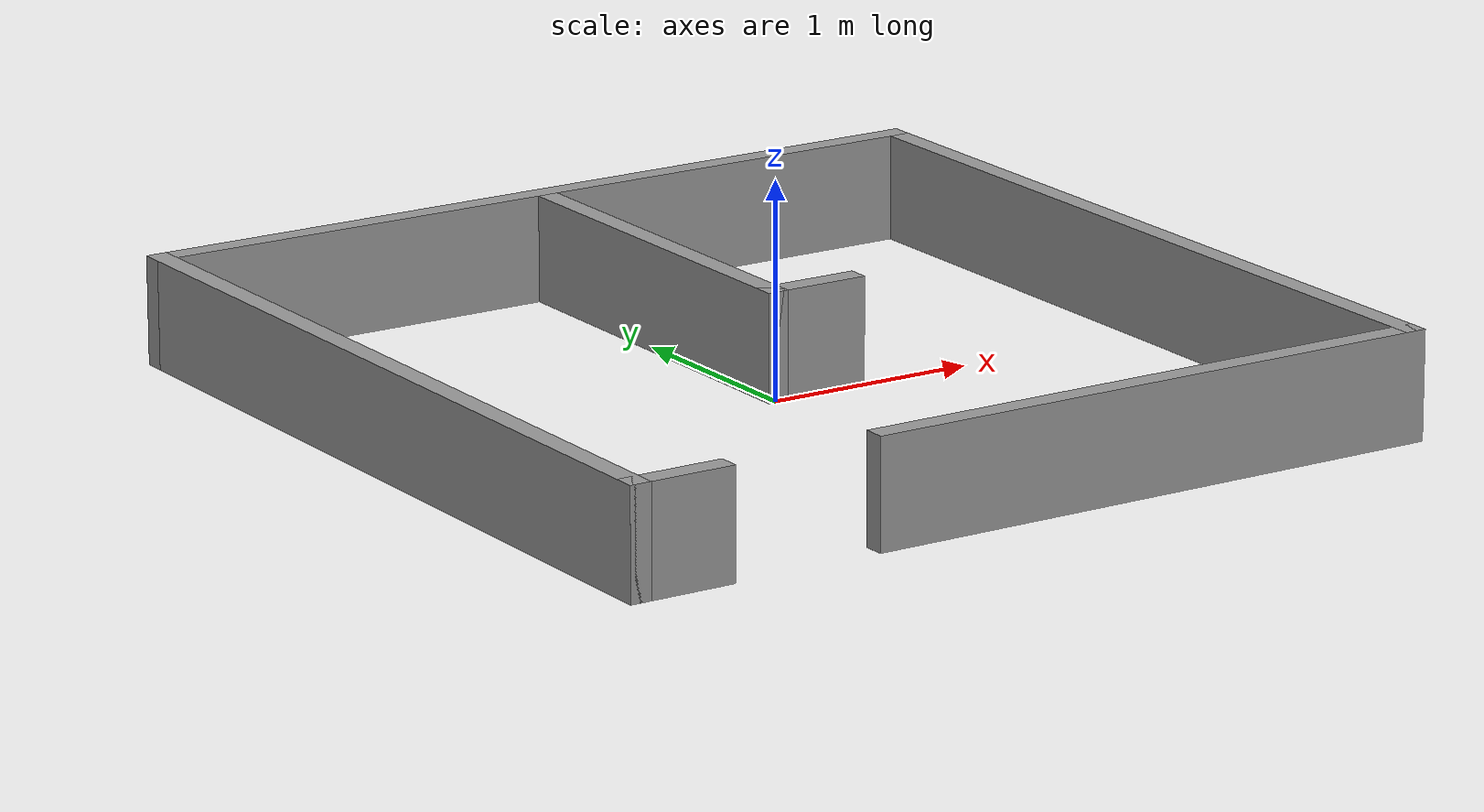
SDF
<?xml version='1.0'?>
<sdf version='1.6'>
  <model name='shape4'>
    <pose frame=''>-0.005 0 0 0 -0 0</pose>
    <link name='Wall_0'>
      <collision name='Wall_0_Collision'>
        <geometry>
          <box>
            <size>4 0.1 0.5</size>
          </box>
        </geometry>
        <pose frame=''>0 0 0.25 0 -0 0</pose>
      </collision>
      <visual name='Wall_0_Visual'>
        <pose frame=''>0 0 0.25 0 -0 0</pose>
        <geometry>
          <box>
            <size>4 0.1 0.5</size>
          </box>
        </geometry>
        <material>
          <script>
            <uri>file://media/materials/scripts/gazebo.material</uri>
            <name>Gazebo/Grey</name>
          </script>
          <ambient>1 1 1 1</ambient>
        </material>
        <meta>
          <layer>0</layer>
        </meta>
      </visual>
      <pose frame=''>-1.95 0 0 0 -0 -1.5708</pose>
    </link>
    <link name='Wall_1'>
      <collision name='Wall_1_Collision'>
        <geometry>
          <box>
            <size>0.5 0.1 0.5</size>
          </box>
        </geometry>
        <pose frame=''>0 0 0.25 0 -0 0</pose>
      </collision>
      <visual name='Wall_1_Visual'>
        <pose frame=''>0 0 0.25 0 -0 0</pose>
        <geometry>
          <box>
            <size>0.5 0.1 0.5</size>
          </box>
        </geometry>
        <material>
          <script>
            <uri>file://media/materials/scripts/gazebo.material</uri>
            <name>Gazebo/Grey</name>
          </script>
          <ambient>1 1 1 1</ambient>
        </material>
        <meta>
          <layer>0</layer>
        </meta>
      </visual>
      <pose frame=''>-1.75 -1.95 0 0 -0 0</pose>
    </link>
    <link name='Wall_3'>
      <collision name='Wall_3_Collision'>
        <geometry>
          <box>
            <size>4 0.1 0.5</size>
          </box>
        </geometry>
        <pose frame=''>0 0 0.25 0 -0 0</pose>
      </collision>
      <visual name='Wall_3_Visual'>
        <pose frame=''>0 0 0.25 0 -0 0</pose>
        <geometry>
          <box>
            <size>4 0.1 0.5</size>
          </box>
        </geometry>
        <material>
          <script>
            <uri>file://media/materials/scripts/gazebo.material</uri>
            <name>Gazebo/Grey</name>
          </script>
          <ambient>1 1 1 1</ambient>
        </material>
        <meta>
          <layer>0</layer>
        </meta>
      </visual>
      <pose frame=''>0 1.95 0 0 -0 0</pose>
    </link>
    <link name='Wall_4'>
      <collision name='Wall_4_Collision'>
        <geometry>
          <box>
            <size>4 0.1 0.5</size>
          </box>
        </geometry>
        <pose frame=''>0 0 0.25 0 -0 0</pose>
      </collision>
      <visual name='Wall_4_Visual'>
        <pose frame=''>0 0 0.25 0 -0 0</pose>
        <geometry>
          <box>
            <size>4 0.1 0.5</size>
          </box>
        </geometry>
        <material>
          <script>
            <uri>file://media/materials/scripts/gazebo.material</uri>
            <name>Gazebo/Grey</name>
          </script>
          <ambient>1 1 1 1</ambient>
        </material>
        <meta>
          <layer>0</layer>
        </meta>
      </visual>
      <pose frame=''>1.95 0 0 0 -0 -1.5708</pose>
    </link>
    <link name='Wall_5'>
      <collision name='Wall_5_Collision'>
        <geometry>
          <box>
            <size>2.8 0.1 0.5</size>
          </box>
        </geometry>
        <pose frame=''>0 0 0.25 0 -0 0</pose>
      </collision>
      <visual name='Wall_5_Visual'>
        <pose frame=''>0 0 0.25 0 -0 0</pose>
        <geometry>
          <box>
            <size>2.8 0.1 0.5</size>
          </box>
        </geometry>
        <material>
          <script>
            <uri>file://media/materials/scripts/gazebo.material</uri>
            <name>Gazebo/Grey</name>
          </script>
          <ambient>1 1 1 1</ambient>
        </material>
        <meta>
          <layer>0</layer>
        </meta>
      </visual>
      <pose frame=''>0.6 -1.95 0 0 -0 3.14159</pose>
    </link>
    <link name='Wall_7'>
      <collision name='Wall_7_Collision'>
        <geometry>
          <box>
            <size>2 0.1 0.5</size>
          </box>
        </geometry>
        <pose frame=''>0 0 0.25 0 -0 0</pose>
      </collision>
      <visual name='Wall_7_Visual'>
        <pose frame=''>0 0 0.25 0 -0 0</pose>
        <geometry>
          <box>
            <size>2 0.1 0.5</size>
          </box>
        </geometry>
        <material>
          <script>
            <uri>file://media/materials/scripts/gazebo.material</uri>
            <name>Gazebo/Grey</name>
          </script>
          <ambient>1 1 1 1</ambient>
        </material>
        <meta>
          <layer>0</layer>
        </meta>
      </visual>
      <pose frame=''>0.015 0.991 0 0 -0 -1.5708</pose>
    </link>
    <link name='Wall_8'>
      <collision name='Wall_8_Collision'>
        <geometry>
          <box>
            <size>0.5 0.1 0.5</size>
          </box>
        </geometry>
        <pose frame=''>0 0 0.25 0 -0 0</pose>
      </collision>
      <visual name='Wall_8_Visual'>
        <pose frame=''>0 0 0.25 0 -0 0</pose>
        <geometry>
          <box>
            <size>0.5 0.1 0.5</size>
          </box>
        </geometry>
        <material>
          <script>
            <uri>file://media/materials/scripts/gazebo.material</uri>
            <name>Gazebo/Grey</name>
          </script>
          <ambient>1 1 1 1</ambient>
        </material>
        <meta>
          <layer>0</layer>
        </meta>
      </visual>
      <pose frame=''>0.215 0.041 0 0 -0 0</pose>
    </link>
    <static>1</static>
  </model>
</sdf>
